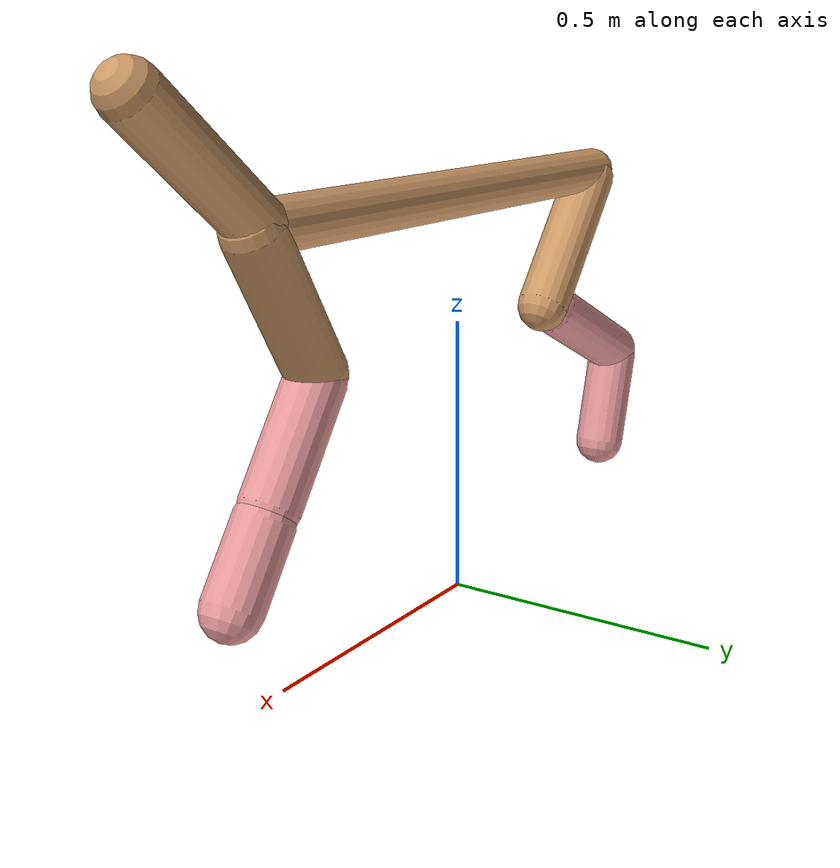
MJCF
<mujoco model="cheetah">
  <compiler angle="radian" coordinate="local" inertiafromgeom="true" settotalmass="14" />
  <default>
    <joint armature=".1" damping=".01" limited="true" solimplimit="0 .8 .03" solreflimit=".02 1" stiffness="8" />
    <geom conaffinity="0" condim="3" contype="1" friction="0.8 .1 .1" rgba="0.8 0.6 .4 1" solimp="0.0 0.8 0.01" solref="0.02 1" />
    <motor ctrllimited="true" ctrlrange="-1 1" />
  </default>
  <size nstack="300000" nuser_geom="1" />
  <option gravity="0 0 -9.81" timestep="0.01" />
  <worldbody>
    <body name="torso" pos="0.0 0.0 0.7272117579653022">
      <joint armature="0" axis="1 0 0" damping="0" limited="false" name="ignorex" pos="0 0 0" stiffness="0" type="slide" />
      <joint armature="0" axis="0 0 1" damping="0" limited="false" name="ignorez" pos="0 0 0" stiffness="0" type="slide" />
      <joint armature="0" axis="0 1 0" damping="0" limited="false" name="ignorey" pos="0 0 0" stiffness="0" type="hinge" />
      <geom fromto="-0.5 0.0 0.0 0.531748437830069 0.0 0.0" name="torso" size="0.04227181429902789" type="capsule" />
      <geom axisangle="0 1 0 .87" name="head" pos="0.631748437830069 0.0 0.1" size="0.04638170561570207 0.15" type="capsule" />

      <body name="bthigh" pos="-.5 0 0">
        <joint axis="0 1 0" damping="6" name="bthigh" pos="0 0 0" range="-.52 1.05" stiffness="240" type="hinge" />
        <geom axisangle="0 1 0 -3.8" name="bthigh" pos="0.10203876164381094 0.0 -0.13265039013695423" size="0.049584654988193526 0.14834381771607527" type="capsule" />
        <body name="bshin" pos="0.16407752328762187 0.0 -0.25530078027390846">
          <joint axis="0 1 0" damping="4.5" name="bshin" pos="0 0 0" range="-.785 .785" stiffness="180" type="hinge" />
          <geom axisangle="0 1 0 -2.03" name="bshin" pos="-0.14309393257276376 0.0 -0.07154696628638188" rgba="0.9 0.6 0.6 1" size="0.049584654988193526 0.15345912177525028" type="capsule" />
          <body name="bfoot" pos="-0.2861878651455275 0.0 -0.14309393257276376">
            <joint axis="0 1 0" damping="3" name="bfoot" pos="0 0 0" range="-.4 .785" stiffness="120" type="hinge" />
            <geom axisangle="0 1 0 -.27" name="bfoot" pos="0.030640494538225118 0.0 -0.09907093234026122" rgba="0.9 0.6 0.6 1" size="0.049584654988193526 0.09616771631249019" type="capsule" />
            <inertial mass="10" />
          </body>
        </body>
      </body>
      <body name="fthigh" pos="0.531748437830069 0.0 0.0">
        <joint axis="0 1 0" damping="4.5" name="fthigh" pos="0 0 0" range="-1.5 0.8" stiffness="180" type="hinge" />
        <geom axisangle="0 1 0 .52" name="fthigh" pos="-0.07046994637054005 0.0 -0.12080562234949722" size="0.050035063122831985 0.13393267194725328" type="capsule" />
        <body name="fshin" pos="-0.1409398927410801 0.0 -0.24161124469899445">
          <joint axis="0 1 0" damping="3" name="fshin" pos="0 0 0" range="-1.2 1.1" stiffness="120" type="hinge" />
          <geom axisangle="0 1 0 -.6" name="fshin" pos="0.06543521417432298 0.0 -0.09060260424137026" rgba="0.9 0.6 0.6 1" size="0.050035063122831985 0.10674333252938982" type="capsule" />
          <body name="ffoot" pos="0.13087042834864596 0.0 -0.18120520848274052">
            <joint axis="0 1 0" damping="1.5" name="ffoot" pos="0 0 0" range="-3.1 -0.3" stiffness="60" type="hinge" />
            <geom axisangle="0 1 0 -.6" name="ffoot" pos="0.04526544707141176 0.0 -0.07041291766664053" rgba="0.9 0.6 0.6 1" size="0.050035063122831985 0.07049087997223857" type="capsule" />
            <inertial mass="10" />
          </body>
        </body>
      </body>
    </body>
  </worldbody>
  <actuator>
    <motor gear="120" joint="bthigh" name="bthigh" />
    <motor gear="90" joint="bshin" name="bshin" />
    <motor gear="60" joint="bfoot" name="bfoot" />
    <motor gear="120" joint="fthigh" name="fthigh" />
    <motor gear="60" joint="fshin" name="fshin" />
    <motor gear="30" joint="ffoot" name="ffoot" />
  </actuator>
</mujoco>
